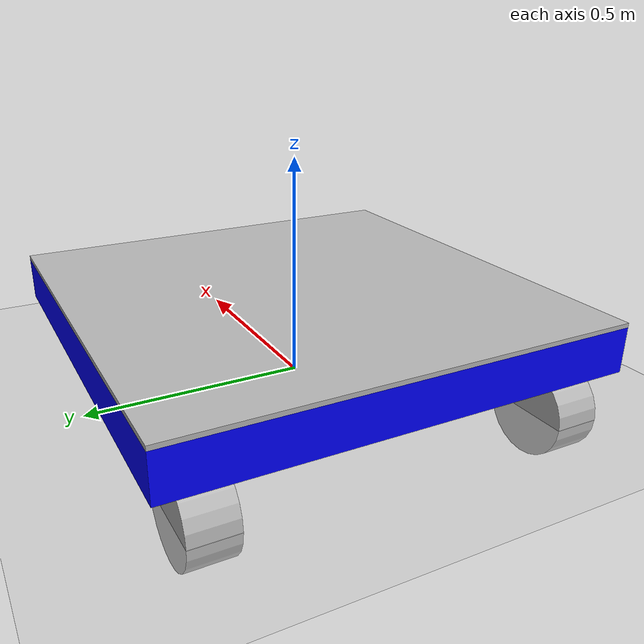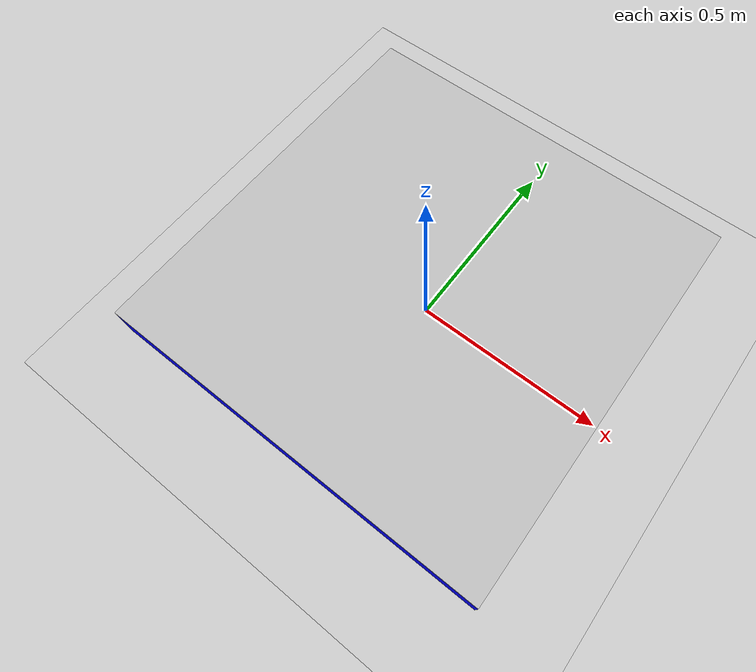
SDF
<?xml version="1.0" ?>
<sdf version="1.5">
  <world name="default">
    <gui>
      <plugin name="video_widget" filename="libgazebo_video_stream_widget.so"/>
    </gui>
    <!-- A global light source -->
    <include>
      <uri>model://sun</uri>
    </include>
    <!-- A ground plane -->
    <include>
      <uri>model://ground_plane</uri>
    </include>
    <include>
      <uri>model://asphalt_plane</uri>
    </include>
    <include>
      <uri>model://simple_car</uri>
    </include>
    <physics name='default_physics' default='0' type='ode'>
      <gravity>0 0 -9.8066</gravity>
      <ode>
        <solver>
          <type>quick</type>
          <iters>50</iters>
          <sor>1.0</sor>
          <use_dynamic_moi_rescaling>0</use_dynamic_moi_rescaling>
        </solver>
        <constraints>
          <cfm>0</cfm>
          <erp>0.2</erp>
          <contact_max_correcting_vel>100</contact_max_correcting_vel>
          <contact_surface_layer>0.001</contact_surface_layer>
        </constraints>
      </ode>
      <max_step_size>0.004</max_step_size>
      <real_time_factor>1</real_time_factor>
      <real_time_update_rate>250</real_time_update_rate>
      <magnetic_field>6.0e-6 2.3e-5 -4.2e-5</magnetic_field>
    </physics>
  </world>
</sdf>

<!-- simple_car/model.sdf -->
<sdf version="1.6">
  <model name="simple_car">
    <static>false</static>

    <link name="base_link">
      <pose>0 0 0.15 0 0 0</pose>
      <collision name="collision">
        <geometry>
          <box><size>1 1 0.1</size></box>
        </geometry>
      </collision>
      <visual name="visual">
        <geometry>
          <box><size>1 1 0.1</size></box>
        </geometry>
        <material><ambient>0 0 1 1</ambient></material>
      </visual>
      <inertial>
        <mass>5.0</mass>
      </inertial>

      <!-- Landing pad visual -->
      <visual name="landing_pad">
        <pose>0 0 0.055 0 0 0</pose>
        <geometry>
          <box><size>1 1 0.01</size></box>
        </geometry>
        <material>
          <script>
            <uri>model://simple_car/materials/scripts</uri>
            <uri>model://simple_car/materials/textures</uri>
            <name>LandingPad</name>
          </script>
        </material>
      </visual>
    </link>

    <link name="wheel_front">
      <pose>0.4 0 0 0 0 0</pose>
      <collision name="collision">
        <geometry><sphere><radius>0.1</radius></sphere></geometry>
      </collision>
      <visual name="visual">
        <geometry><sphere><radius>0.1</radius></sphere></geometry>
      </visual>
      <inertial><mass>0.1</mass></inertial>
    </link>

    <joint name="wheel_joint_front" type="ball">
    	<parent>base_link</parent>
      <child>wheel_front</child>

    </joint>

    <!-- === REAR WHEELS === -->
    <link name="wheel_back_left">
      <pose>-0.4 0.4 0.0 1.57 0 0</pose>
      <collision name="collision">
        <geometry><cylinder><radius>0.1</radius><length>0.1</length></cylinder></geometry>
      </collision>
      <visual name="visual">
        <geometry><cylinder><radius>0.1</radius><length>0.1</length></cylinder></geometry>

      </visual>
      <inertial><mass>0.1</mass></inertial>
    </link>

    <link name="wheel_back_right">
      <pose>-0.4 -0.4 0.0 -1.57 0 0</pose>
      <collision name="collision">
        <geometry><cylinder><radius>0.1</radius><length>0.1</length></cylinder></geometry>
      </collision>
      <visual name="visual">
        <geometry><cylinder><radius>0.1</radius><length>0.1</length></cylinder></geometry>
      </visual>
      <inertial><mass>0.1</mass></inertial>
    </link>

    <!-- Rear joints -->
    <joint name="left_wheel_joint" type="revolute">
    	<parent>base_link</parent>
      <child>wheel_back_left</child>
      <axis>
        <xyz>0 0 -1</xyz>
        <limit><lower>-1e16</lower><upper>1e16</upper></limit>
      </axis>
    </joint>

    <joint name="right_wheel_joint" type="revolute">
    	<parent>base_link</parent>
      <child>wheel_back_right</child>
      <axis>
        <xyz>0 0 1</xyz>
        <limit><lower>-1e16</lower><upper>1e16</upper></limit>
      </axis>
    </joint>

    <!-- Plugin điều khiển ROS2 -->
    <plugin name="diff_drive_controller" filename="libgazebo_ros_diff_drive.so">
      <ros>
        <namespace>/</namespace>
        <remapping>cmd_vel:=/cmd_vel</remapping>
      </ros>
      <left_joint>left_wheel_joint</left_joint>
      <right_joint>right_wheel_joint</right_joint>
      <wheel_diameter>0.2</wheel_diameter>
      <wheel_separation>0.8</wheel_separation>
      <publish_odom>true</publish_odom>
      <odom_topic>odom</odom_topic>
      <robot_base_frame>base_link</robot_base_frame>
    </plugin>
  </model>
</sdf>
